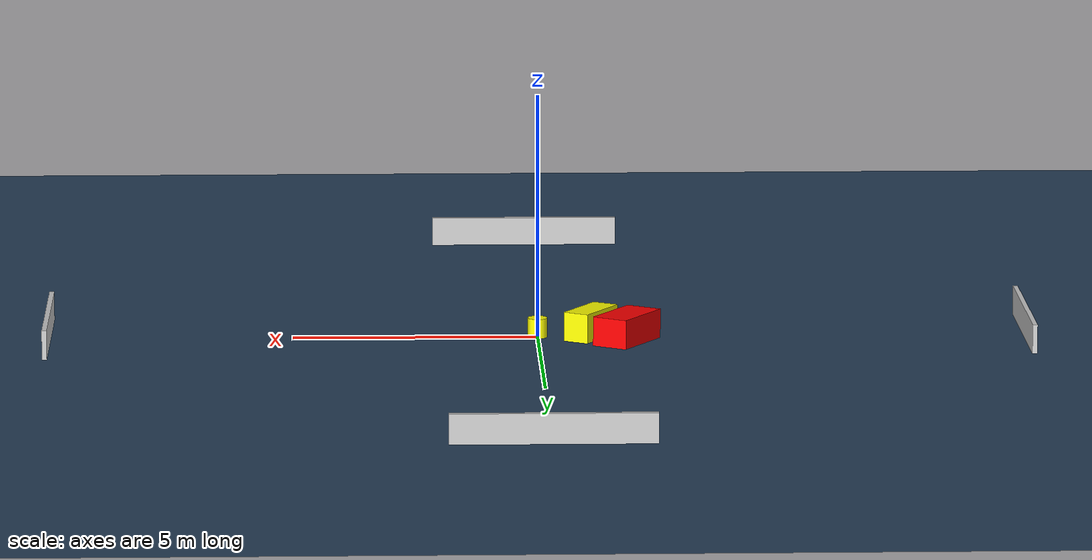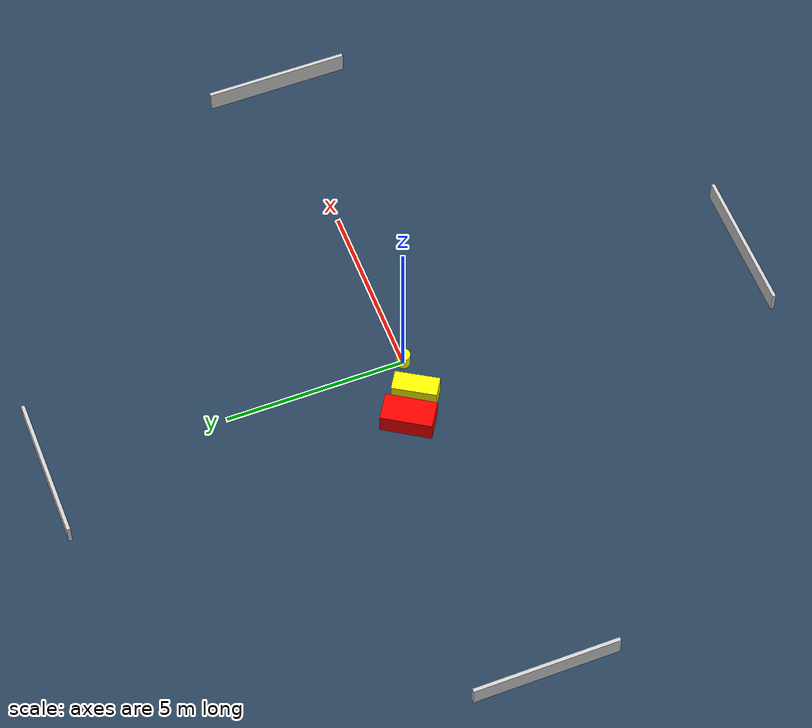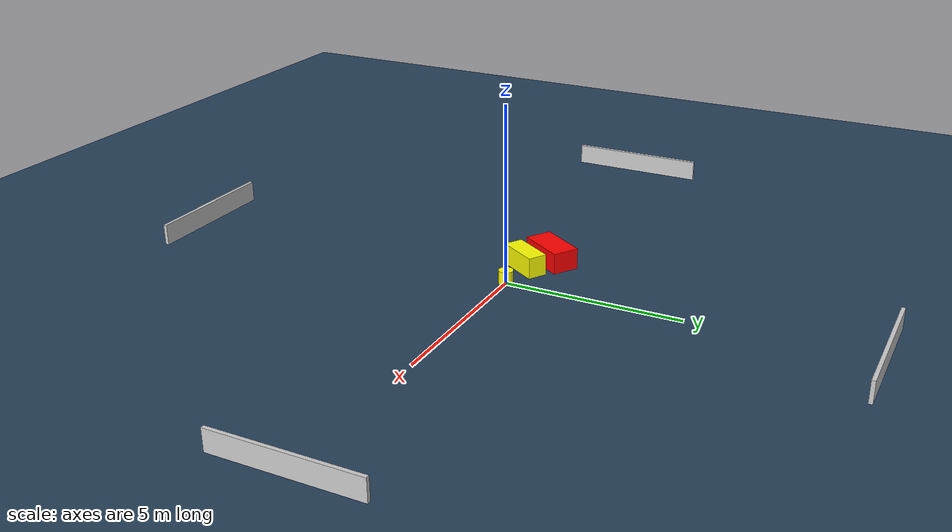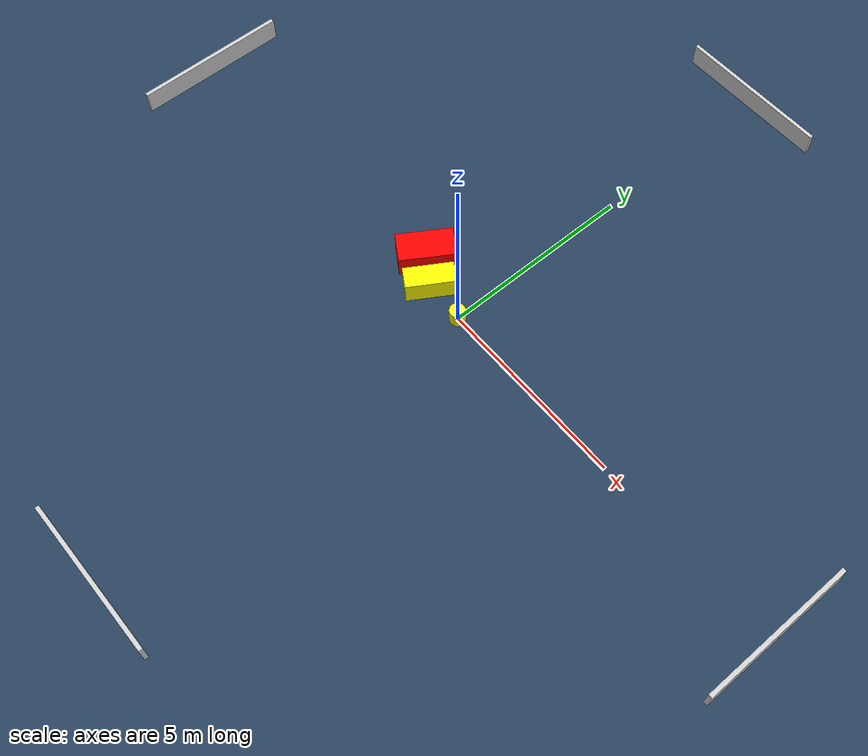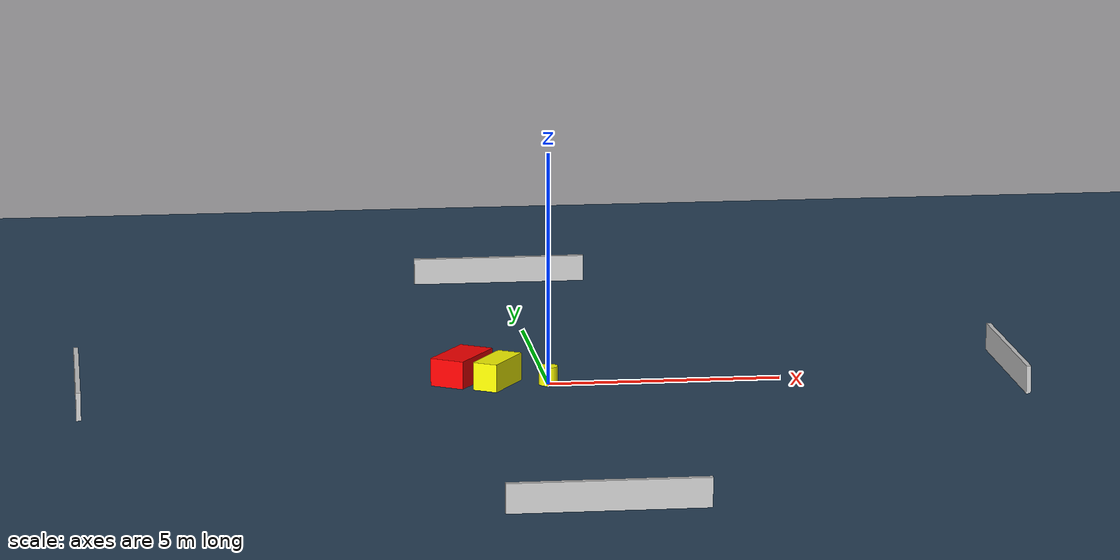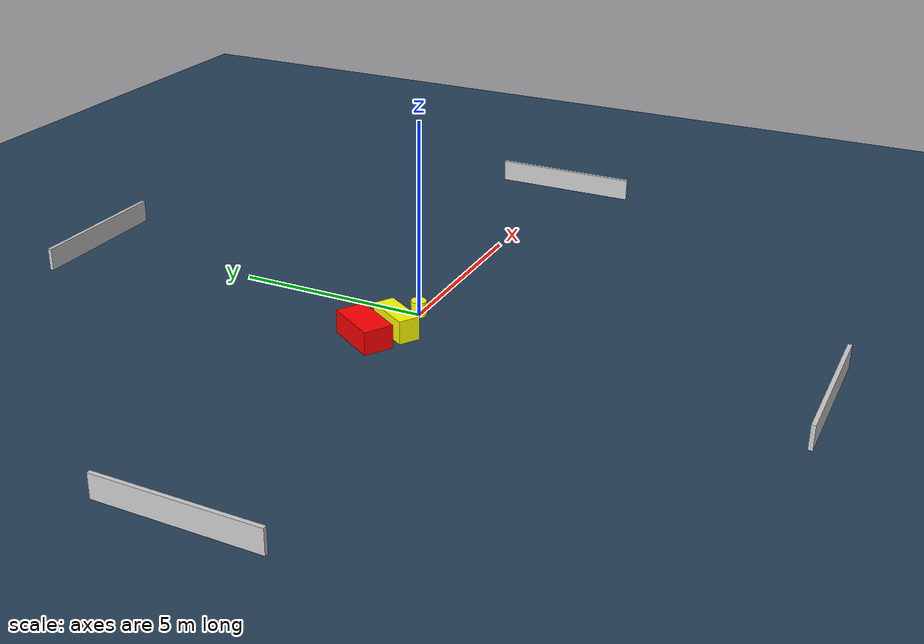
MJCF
<?xml version="1.0" ?>
<mujoco model="generated_environment">
  <option timestep="0.01" integrator="RK4" cone="elliptic"/>
  <default>
    <geom density="1"/>
  </default>
  <asset>
    <texture builtin="gradient" height="3072" name="skybox" rgb1="0.3 0.5 0.7" rgb2="0 0 0" type="skybox" width="512"/>
    <texture builtin="checker" height="300" name="groundplane" rgb1="0.2 0.3 0.4" rgb2="0.1 0.2 0.3" type="2d" width="300"/>
    <material name="groundplane" reflectance="0.2" texrepeat="5 5" texture="groundplane"/>
  </asset>
  <worldbody>
    <light dir="0 0 -1" directional="true" pos="0 0 1.5"/>
    <geom condim="3" friction="0.5 0.005 0.001" material="groundplane" name="floor" pos="0 0 0" size="0 0 0.05" type="plane"/>
    <body name="walls">
      <geom name="wall_1" condim="4" pos="-10.0 0.0 0.3" rgba="0.800000011920929 0.800000011920929 0.800000011920929 1.0" size="0.05 2.0 0.3" type="box"/>
      <geom name="wall_2" condim="4" pos="10.0 0.0 0.3" rgba="0.800000011920929 0.800000011920929 0.800000011920929 1.0" size="0.05 2.0 0.3" type="box"/>
      <geom name="wall_3" condim="4" pos="0.0 -10.0 0.3" rgba="0.800000011920929 0.800000011920929 0.800000011920929 1.0" size="2.0 0.05 0.3" type="box"/>
      <geom name="wall_4" condim="4" pos="0.0 10.0 0.3" rgba="0.800000011920929 0.800000011920929 0.800000011920929 1.0" size="2.0 0.05 0.3" type="box"/>
    </body>
    <body name="robot">
      <joint name="joint_x" type="slide" pos="0 0 0" axis="1 0 0"/>
      <joint name="joint_y" type="slide" pos="0 0 0" axis="0 1 0"/>
      <geom name="robot" type="cylinder" pos="0.0 0.0 0.2" size="0.2 0.2 0.0" mass="5.0" friction="1.0 0.005 0.0001" condim="4" rgba="1.0 1.0 0.0 1.0"/>
    </body>
    <body name="obstacle_1_movable">
      <geom name="obstacle_1_movable" condim="4" pos="-1.0845272826193944 0.057091357608333386 0.3" euler="0 0 148.25262510416064" friction="0.0 0.005 0.001" rgba="1.0 1.0 0.0 1.0" size="0.27529612282653565 0.6188804124821552 0.3" type="box" mass="0.1"/>
      <joint type="free"/>
    </body>
    <body name="obstacle_2_static">
      <geom name="obstacle_2_static" condim="4" pos="-1.8025846787751874 0.540010170082273 0.3" euler="0 0 327.55265015325426" friction="0.0 0.005 0.001" rgba="1.0 0.0 0.0 1.0" size="0.3827967791814749 0.7076949817645608 0.3" type="box"/>
    </body>
  </worldbody>
  <actuator>
    <motor name="actuator_x" joint="joint_x" gear="1" ctrlrange="-1 1"/>
    <motor name="actuator_y" joint="joint_y" gear="1" ctrlrange="-1 1"/>
  </actuator>
</mujoco>
